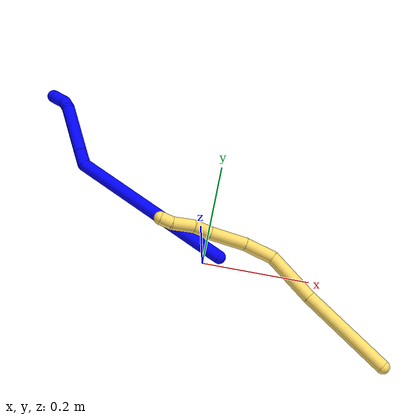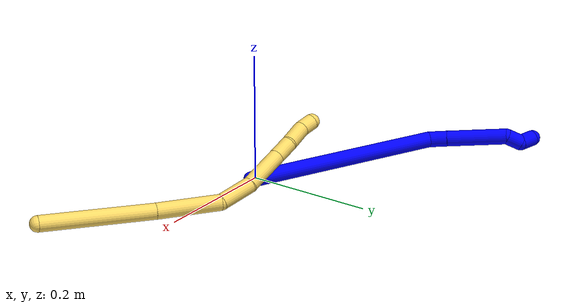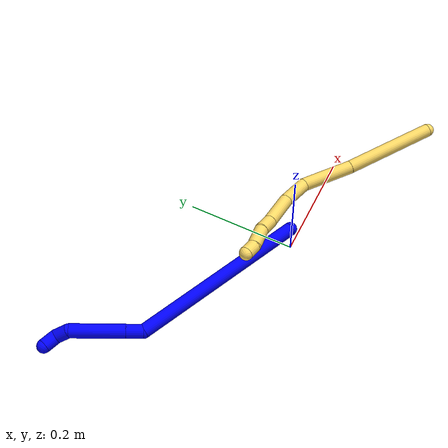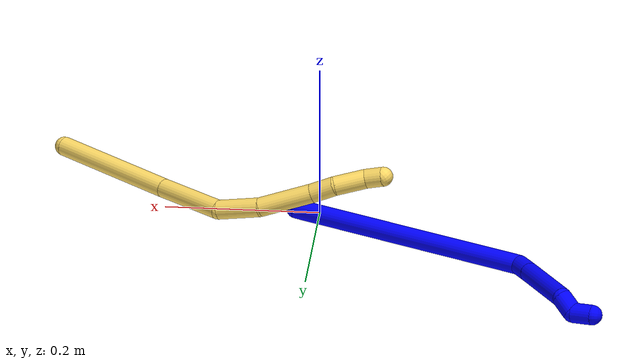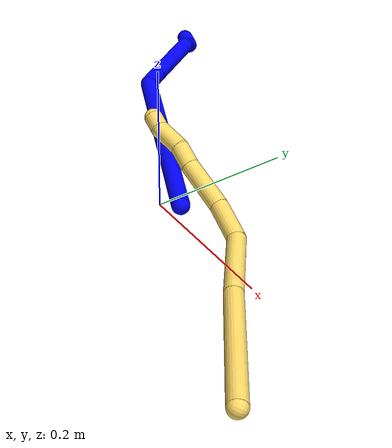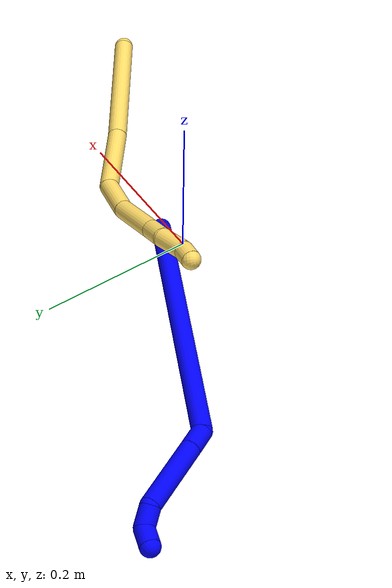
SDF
<sdf version="1.7">
 <world name="default">
  <model name="photoneo_s_sensor">
   <static>1</static>
   <pose>0 0 2 1.57079 1.57079 3.14159</pose>
   <link name="link">
    <inertial><mass>0.1</mass></inertial>
    <sensor name="sensor" type="depth">
     <update_rate>30</update_rate>
     <camera>
      <horizontal_fov>1.22</horizontal_fov>
      <image><width>1920</width><height>1200</height><format>B8G8R8</format></image>
      <clip><near>0.1</near><far>4</far></clip>
      <depth_camera><output>points</output></depth_camera>
     </camera>
     <plugin name="camera_plugin" filename="libgazebo_ros_depth_camera.so">
      <baseline>0.2</baseline>
      <alwaysOn>1</alwaysOn>
      <updateRate>0.0</updateRate>
      <cameraName>camera_ir</cameraName>
      <imageTopicName>/camera/color/image_raw</imageTopicName>
      <cameraInfoTopicName>/camera/color/camera_info</cameraInfoTopicName>
      <depthImageTopicName>/camera/depth/image_raw</depthImageTopicName>
      <depthImageCameraInfoTopicName>/camera/depth/camera_info</depthImageCameraInfoTopicName>
      <pointCloudTopicName>/camera/depth/points</pointCloudTopicName>
      <frameName>fr_optical</frameName>
      <pointCloudCutoff>0.1</pointCloudCutoff>
      <pointCloudCutoffMax>2.0</pointCloudCutoffMax>
      <distortionK1>0</distortionK1>
      <distortionK2>0</distortionK2>
      <distortionK3>0</distortionK3>
      <distortionT1>0</distortionT1>
      <distortionT2>0</distortionT2>
      <CxPrime>0</CxPrime>
      <Cx>0</Cx>
      <Cy>0</Cy>
      <focalLength>0</focalLength>
      <hackBaseline>0</hackBaseline>
     </plugin>
    </sensor>
   </link>
  </model>
  <model name="bin">
   <static>1</static>
   <link name="bottom">
    <collision name="collision-bottom">
     <pose>0 0 -0.01 0 -0 0</pose>
     <geometry><box><size>0.8 0.6 0.02</size></box></geometry>
     <surface>
      <friction><ode><mu>100</mu><mu2>100</mu2></ode></friction>
      <contact><collide_bitmask>65535</collide_bitmask></contact>
     </surface>
    </collision>
   </link>
   <link name="west_wall">
    <collision name="collision-west_wall">
     <pose>-0.41 0 0.1 0 -0 0</pose>
     <geometry><box><size>0.02 0.6 0.2</size></box></geometry>
     <surface>
      <friction><ode><mu>100</mu><mu2>100</mu2></ode></friction>
      <contact><collide_bitmask>65535</collide_bitmask></contact>
     </surface>
    </collision>
   </link>
   <link name="east_wall">
    <collision name="collision-east_wall">
     <pose>0.41 0 0.1 0 -0 0</pose>
     <geometry><box><size>0.02 0.6 0.2</size></box></geometry>
     <surface>
      <friction><ode><mu>100</mu><mu2>100</mu2></ode></friction>
      <contact><collide_bitmask>65535</collide_bitmask></contact>
     </surface>
    </collision>
   </link>
   <link name="south_wall">
    <collision name="collision-south_wall">
     <pose>0 -0.31 0.1 0 -0 0</pose>
     <geometry><box><size>0.8 0.02 0.2</size></box></geometry>
     <surface>
      <friction><ode><mu>100</mu><mu2>100</mu2></ode></friction>
      <contact><collide_bitmask>65535</collide_bitmask></contact>
     </surface>
    </collision>
   </link>
   <link name="north_wall">
    <collision name="collision-north_wall">
     <pose>0 0.31 0.1 0 -0 0</pose>
     <geometry><box><size>0.8 0.02 0.2</size></box></geometry>
     <surface>
      <friction><ode><mu>100</mu><mu2>100</mu2></ode></friction>
      <contact><collide_bitmask>65535</collide_bitmask></contact>
     </surface>
    </collision>
   </link>
  </model>
  <model name="1">
   <static>0</static>
   <link name="1">
    <collision name="collision-cylinder-e_1_1_4">
     <pose>-0.050463 0.036987 0.149506 -0.242526 -0.316632 0.038906</pose>
     <geometry><cylinder><radius>0.0125</radius><length>0.32414</length></cylinder></geometry>
     <surface>
      <friction><ode><mu>1.16</mu><mu2>1.16</mu2><slip1>0</slip1><slip2>0</slip2></ode></friction>
      <contact><ode><kp>1e+06</kp><kd>1</kd><max_vel>0</max_vel><min_depth>0.001</min_depth></ode></contact>
     </surface>
    </collision>
    <visual name="visual-cylinder-e_1_1_4">
     <pose>-0.050463 0.036987 0.149506 -0.242526 -0.316632 0.038906</pose>
     <geometry><cylinder><radius>0.0125</radius><length>0.32414</length></cylinder></geometry>
     <material><ambient>0 0 1 1</ambient></material>
    </visual>
    <collision name="collision-cylinder-e_2_4_5">
     <pose>-0.110583 0.082346 0.306589 -0.835223 -0.707504 0.324826</pose>
     <geometry><cylinder><radius>0.0125</radius><length>0.029713</length></cylinder></geometry>
     <surface>
      <friction><ode><mu>1.16</mu><mu2>1.16</mu2><slip1>0</slip1><slip2>0</slip2></ode></friction>
      <contact><ode><kp>1e+06</kp><kd>1</kd><max_vel>0</max_vel><min_depth>0.001</min_depth></ode></contact>
     </surface>
    </collision>
    <visual name="visual-cylinder-e_2_4_5">
     <pose>-0.110583 0.082346 0.306589 -0.835223 -0.707504 0.324826</pose>
     <geometry><cylinder><radius>0.0125</radius><length>0.029713</length></cylinder></geometry>
     <material><ambient>0 0 1 1</ambient></material>
    </visual>
    <collision name="collision-cylinder-e_3_5_6">
     <pose>-0.151496 0.117405 0.337959 -0.842657 -0.71838 0.33343</pose>
     <geometry><cylinder><radius>0.0125</radius><length>0.094982</length></cylinder></geometry>
     <surface>
      <friction><ode><mu>1.16</mu><mu2>1.16</mu2><slip1>0</slip1><slip2>0</slip2></ode></friction>
      <contact><ode><kp>1e+06</kp><kd>1</kd><max_vel>0</max_vel><min_depth>0.001</min_depth></ode></contact>
     </surface>
    </collision>
    <visual name="visual-cylinder-e_3_5_6">
     <pose>-0.151496 0.117405 0.337959 -0.842657 -0.71838 0.33343</pose>
     <geometry><cylinder><radius>0.0125</radius><length>0.094982</length></cylinder></geometry>
     <material><ambient>0 0 1 1</ambient></material>
    </visual>
    <collision name="collision-cylinder-e_4_6_7">
     <pose>-0.193004 0.144326 0.369486 -0.030124 -0.924357 0.015007</pose>
     <geometry><cylinder><radius>0.0125</radius><length>0.025685</length></cylinder></geometry>
     <surface>
      <friction><ode><mu>1.16</mu><mu2>1.16</mu2><slip1>0</slip1><slip2>0</slip2></ode></friction>
      <contact><ode><kp>1e+06</kp><kd>1</kd><max_vel>0</max_vel><min_depth>0.001</min_depth></ode></contact>
     </surface>
    </collision>
    <visual name="visual-cylinder-e_4_6_7">
     <pose>-0.193004 0.144326 0.369486 -0.030124 -0.924357 0.015007</pose>
     <geometry><cylinder><radius>0.0125</radius><length>0.025685</length></cylinder></geometry>
     <material><ambient>0 0 1 1</ambient></material>
    </visual>
    <collision name="collision-cylinder-e_5_7_2">
     <pose>-0.205483 0.147361 0.389444 -0.225266 -0.175751 0.01993</pose>
     <geometry><cylinder><radius>0.0125</radius><length>0.025479</length></cylinder></geometry>
     <surface>
      <friction><ode><mu>1.16</mu><mu2>1.16</mu2><slip1>0</slip1><slip2>0</slip2></ode></friction>
      <contact><ode><kp>1e+06</kp><kd>1</kd><max_vel>0</max_vel><min_depth>0.001</min_depth></ode></contact>
     </surface>
    </collision>
    <visual name="visual-cylinder-e_5_7_2">
     <pose>-0.205483 0.147361 0.389444 -0.225266 -0.175751 0.01993</pose>
     <geometry><cylinder><radius>0.0125</radius><length>0.025479</length></cylinder></geometry>
     <material><ambient>0 0 1 1</ambient></material>
    </visual>
    <collision name="collision-sphere-2">
     <pose>-0.20771 0.150163 0.401671 0 -0 0</pose>
     <geometry><sphere><radius>0.0125</radius></sphere></geometry>
     <surface>
      <friction><ode><mu>1.16</mu><mu2>1.16</mu2><slip1>0</slip1><slip2>0</slip2></ode></friction>
      <contact><ode><kp>1e+06</kp><kd>1</kd><max_vel>0</max_vel><min_depth>0.001</min_depth></ode></contact>
     </surface>
    </collision>
    <visual name="visual-sphere-2">
     <pose>-0.20771 0.150163 0.401671 0 -0 0</pose>
     <geometry><sphere><radius>0.0125</radius></sphere></geometry>
     <material><ambient>0 0 1 1</ambient></material>
    </visual>
    <collision name="collision-sphere-7">
     <pose>-0.203255 0.144559 0.377218 0 -0 0</pose>
     <geometry><sphere><radius>0.0125</radius></sphere></geometry>
     <surface>
      <friction><ode><mu>1.16</mu><mu2>1.16</mu2><slip1>0</slip1><slip2>0</slip2></ode></friction>
      <contact><ode><kp>1e+06</kp><kd>1</kd><max_vel>0</max_vel><min_depth>0.001</min_depth></ode></contact>
     </surface>
    </collision>
    <visual name="visual-sphere-7">
     <pose>-0.203255 0.144559 0.377218 0 -0 0</pose>
     <geometry><sphere><radius>0.0125</radius></sphere></geometry>
     <material><ambient>0 0 1 1</ambient></material>
    </visual>
    <collision name="collision-sphere-6">
     <pose>-0.182753 0.144093 0.361753 0 -0 0</pose>
     <geometry><sphere><radius>0.0125</radius></sphere></geometry>
     <surface>
      <friction><ode><mu>1.16</mu><mu2>1.16</mu2><slip1>0</slip1><slip2>0</slip2></ode></friction>
      <contact><ode><kp>1e+06</kp><kd>1</kd><max_vel>0</max_vel><min_depth>0.001</min_depth></ode></contact>
     </surface>
    </collision>
    <visual name="visual-sphere-6">
     <pose>-0.182753 0.144093 0.361753 0 -0 0</pose>
     <geometry><sphere><radius>0.0125</radius></sphere></geometry>
     <material><ambient>0 0 1 1</ambient></material>
    </visual>
    <collision name="collision-sphere-5">
     <pose>-0.120239 0.090717 0.314165 0 -0 0</pose>
     <geometry><sphere><radius>0.0125</radius></sphere></geometry>
     <surface>
      <friction><ode><mu>1.16</mu><mu2>1.16</mu2><slip1>0</slip1><slip2>0</slip2></ode></friction>
      <contact><ode><kp>1e+06</kp><kd>1</kd><max_vel>0</max_vel><min_depth>0.001</min_depth></ode></contact>
     </surface>
    </collision>
    <visual name="visual-sphere-5">
     <pose>-0.120239 0.090717 0.314165 0 -0 0</pose>
     <geometry><sphere><radius>0.0125</radius></sphere></geometry>
     <material><ambient>0 0 1 1</ambient></material>
    </visual>
    <collision name="collision-sphere-1">
     <geometry><sphere><radius>0.0125</radius></sphere></geometry>
     <surface>
      <friction><ode><mu>1.16</mu><mu2>1.16</mu2><slip1>0</slip1><slip2>0</slip2></ode></friction>
      <contact><ode><kp>1e+06</kp><kd>1</kd><max_vel>0</max_vel><min_depth>0.001</min_depth></ode></contact>
     </surface>
    </collision>
    <visual name="visual-sphere-1">
     <geometry><sphere><radius>0.0125</radius></sphere></geometry>
     <material><ambient>0 0 1 1</ambient></material>
    </visual>
    <collision name="collision-sphere-4">
     <pose>-0.100927 0.073974 0.299013 0 -0 0</pose>
     <geometry><sphere><radius>0.0125</radius></sphere></geometry>
     <surface>
      <friction><ode><mu>1.16</mu><mu2>1.16</mu2><slip1>0</slip1><slip2>0</slip2></ode></friction>
      <contact><ode><kp>1e+06</kp><kd>1</kd><max_vel>0</max_vel><min_depth>0.001</min_depth></ode></contact>
     </surface>
    </collision>
    <visual name="visual-sphere-4">
     <pose>-0.100927 0.073974 0.299013 0 -0 0</pose>
     <geometry><sphere><radius>0.0125</radius></sphere></geometry>
     <material><ambient>0 0 1 1</ambient></material>
    </visual>
    <inertial>
     <pose>-0.08845 0.066098 0.218168 0 -0 0</pose>
     <mass>0.5</mass>
     <inertia>
      <ixx>0.002875</ixx>
      <ixy>0</ixy>
      <ixz>0</ixz>
      <iyy>0.002977</iyy>
      <iyz>0</iyz>
      <izz>0.000278</izz>
     </inertia>
    </inertial>
   </link>
   <pose>0.029253 0.014098 0.011492 1.59038 -0.589645 -1.62398</pose>
  </model>
  <model name="5">
   <static>0</static>
   <link name="5">
    <collision name="collision-cylinder-e_1_1_4">
     <pose>-0.074235 0.046263 -0.011235 -1.80904 -1.00056 1.21515</pose>
     <geometry><cylinder><radius>0.0125</radius><length>0.176378</length></cylinder></geometry>
     <surface>
      <friction><ode><mu>1.16</mu><mu2>1.16</mu2><slip1>0</slip1><slip2>0</slip2></ode></friction>
      <contact><ode><kp>1e+06</kp><kd>1</kd><max_vel>0</max_vel><min_depth>0.001</min_depth></ode></contact>
     </surface>
    </collision>
    <visual name="visual-cylinder-e_1_1_4">
     <pose>-0.074235 0.046263 -0.011235 -1.80904 -1.00056 1.21515</pose>
     <geometry><cylinder><radius>0.0125</radius><length>0.176378</length></cylinder></geometry>
     <material><ambient>1 0.858824 0.4 1</ambient></material>
    </visual>
    <collision name="collision-cylinder-e_2_4_5">
     <pose>-0.192195 0.115436 -0.027358 -1.78098 -1.07895 1.27403</pose>
     <geometry><cylinder><radius>0.0125</radius><length>0.09921</length></cylinder></geometry>
     <surface>
      <friction><ode><mu>1.16</mu><mu2>1.16</mu2><slip1>0</slip1><slip2>0</slip2></ode></friction>
      <contact><ode><kp>1e+06</kp><kd>1</kd><max_vel>0</max_vel><min_depth>0.001</min_depth></ode></contact>
     </surface>
    </collision>
    <visual name="visual-cylinder-e_2_4_5">
     <pose>-0.192195 0.115436 -0.027358 -1.78098 -1.07895 1.27403</pose>
     <geometry><cylinder><radius>0.0125</radius><length>0.09921</length></cylinder></geometry>
     <material><ambient>1 0.858824 0.4 1</ambient></material>
    </visual>
    <collision name="collision-cylinder-e_3_5_6">
     <pose>-0.257196 0.149154 -0.047989 -2.54 -0.839334 1.92651</pose>
     <geometry><cylinder><radius>0.0125</radius><length>0.05718</length></cylinder></geometry>
     <surface>
      <friction><ode><mu>1.16</mu><mu2>1.16</mu2><slip1>0</slip1><slip2>0</slip2></ode></friction>
      <contact><ode><kp>1e+06</kp><kd>1</kd><max_vel>0</max_vel><min_depth>0.001</min_depth></ode></contact>
     </surface>
    </collision>
    <visual name="visual-cylinder-e_3_5_6">
     <pose>-0.257196 0.149154 -0.047989 -2.54 -0.839334 1.92651</pose>
     <geometry><cylinder><radius>0.0125</radius><length>0.05718</length></cylinder></geometry>
     <material><ambient>1 0.858824 0.4 1</ambient></material>
    </visual>
    <collision name="collision-cylinder-e_4_6_7">
     <pose>-0.301202 0.169231 -0.089471 -2.79593 -0.693297 2.24124</pose>
     <geometry><cylinder><radius>0.0125</radius><length>0.071131</length></cylinder></geometry>
     <surface>
      <friction><ode><mu>1.16</mu><mu2>1.16</mu2><slip1>0</slip1><slip2>0</slip2></ode></friction>
      <contact><ode><kp>1e+06</kp><kd>1</kd><max_vel>0</max_vel><min_depth>0.001</min_depth></ode></contact>
     </surface>
    </collision>
    <visual name="visual-cylinder-e_4_6_7">
     <pose>-0.301202 0.169231 -0.089471 -2.79593 -0.693297 2.24124</pose>
     <geometry><cylinder><radius>0.0125</radius><length>0.071131</length></cylinder></geometry>
     <material><ambient>1 0.858824 0.4 1</ambient></material>
    </visual>
    <collision name="collision-cylinder-e_5_7_8">
     <pose>-0.335099 0.181433 -0.126062 -2.87767 -0.781996 2.51857</pose>
     <geometry><cylinder><radius>0.0125</radius><length>0.031695</length></cylinder></geometry>
     <surface>
      <friction><ode><mu>1.16</mu><mu2>1.16</mu2><slip1>0</slip1><slip2>0</slip2></ode></friction>
      <contact><ode><kp>1e+06</kp><kd>1</kd><max_vel>0</max_vel><min_depth>0.001</min_depth></ode></contact>
     </surface>
    </collision>
    <visual name="visual-cylinder-e_5_7_8">
     <pose>-0.335099 0.181433 -0.126062 -2.87767 -0.781996 2.51857</pose>
     <geometry><cylinder><radius>0.0125</radius><length>0.031695</length></cylinder></geometry>
     <material><ambient>1 0.858824 0.4 1</ambient></material>
    </visual>
    <collision name="collision-cylinder-e_6_8_9">
     <pose>-0.356675 0.191289 -0.15321 -2.73978 -0.531526 1.85694</pose>
     <geometry><cylinder><radius>0.0125</radius><length>0.041072</length></cylinder></geometry>
     <surface>
      <friction><ode><mu>1.16</mu><mu2>1.16</mu2><slip1>0</slip1><slip2>0</slip2></ode></friction>
      <contact><ode><kp>1e+06</kp><kd>1</kd><max_vel>0</max_vel><min_depth>0.001</min_depth></ode></contact>
     </surface>
    </collision>
    <visual name="visual-cylinder-e_6_8_9">
     <pose>-0.356675 0.191289 -0.15321 -2.73978 -0.531526 1.85694</pose>
     <geometry><cylinder><radius>0.0125</radius><length>0.041072</length></cylinder></geometry>
     <material><ambient>1 0.858824 0.4 1</ambient></material>
    </visual>
    <collision name="collision-cylinder-e_7_9_2">
     <pose>-0.375545 0.202207 -0.176472 -2.62114 -0.811372 2.03172</pose>
     <geometry><cylinder><radius>0.0125</radius><length>0.023334</length></cylinder></geometry>
     <surface>
      <friction><ode><mu>1.16</mu><mu2>1.16</mu2><slip1>0</slip1><slip2>0</slip2></ode></friction>
      <contact><ode><kp>1e+06</kp><kd>1</kd><max_vel>0</max_vel><min_depth>0.001</min_depth></ode></contact>
     </surface>
    </collision>
    <visual name="visual-cylinder-e_7_9_2">
     <pose>-0.375545 0.202207 -0.176472 -2.62114 -0.811372 2.03172</pose>
     <geometry><cylinder><radius>0.0125</radius><length>0.023334</length></cylinder></geometry>
     <material><ambient>1 0.858824 0.4 1</ambient></material>
    </visual>
    <collision name="collision-sphere-2">
     <pose>-0.384007 0.206201 -0.183441 0 -0 0</pose>
     <geometry><sphere><radius>0.0125</radius></sphere></geometry>
     <surface>
      <friction><ode><mu>1.16</mu><mu2>1.16</mu2><slip1>0</slip1><slip2>0</slip2></ode></friction>
      <contact><ode><kp>1e+06</kp><kd>1</kd><max_vel>0</max_vel><min_depth>0.001</min_depth></ode></contact>
     </surface>
    </collision>
    <visual name="visual-sphere-2">
     <pose>-0.384007 0.206201 -0.183441 0 -0 0</pose>
     <geometry><sphere><radius>0.0125</radius></sphere></geometry>
     <material><ambient>1 0.858824 0.4 1</ambient></material>
    </visual>
    <collision name="collision-sphere-9">
     <pose>-0.367084 0.198212 -0.169502 0 -0 0</pose>
     <geometry><sphere><radius>0.0125</radius></sphere></geometry>
     <surface>
      <friction><ode><mu>1.16</mu><mu2>1.16</mu2><slip1>0</slip1><slip2>0</slip2></ode></friction>
      <contact><ode><kp>1e+06</kp><kd>1</kd><max_vel>0</max_vel><min_depth>0.001</min_depth></ode></contact>
     </surface>
    </collision>
    <visual name="visual-sphere-9">
     <pose>-0.367084 0.198212 -0.169502 0 -0 0</pose>
     <geometry><sphere><radius>0.0125</radius></sphere></geometry>
     <material><ambient>1 0.858824 0.4 1</ambient></material>
    </visual>
    <collision name="collision-sphere-4">
     <pose>-0.14847 0.092525 -0.02247 0 -0 0</pose>
     <geometry><sphere><radius>0.0125</radius></sphere></geometry>
     <surface>
      <friction><ode><mu>1.16</mu><mu2>1.16</mu2><slip1>0</slip1><slip2>0</slip2></ode></friction>
      <contact><ode><kp>1e+06</kp><kd>1</kd><max_vel>0</max_vel><min_depth>0.001</min_depth></ode></contact>
     </surface>
    </collision>
    <visual name="visual-sphere-4">
     <pose>-0.14847 0.092525 -0.02247 0 -0 0</pose>
     <geometry><sphere><radius>0.0125</radius></sphere></geometry>
     <material><ambient>1 0.858824 0.4 1</ambient></material>
    </visual>
    <collision name="collision-sphere-1">
     <geometry><sphere><radius>0.0125</radius></sphere></geometry>
     <surface>
      <friction><ode><mu>1.16</mu><mu2>1.16</mu2><slip1>0</slip1><slip2>0</slip2></ode></friction>
      <contact><ode><kp>1e+06</kp><kd>1</kd><max_vel>0</max_vel><min_depth>0.001</min_depth></ode></contact>
     </surface>
    </collision>
    <visual name="visual-sphere-1">
     <geometry><sphere><radius>0.0125</radius></sphere></geometry>
     <material><ambient>1 0.858824 0.4 1</ambient></material>
    </visual>
    <collision name="collision-sphere-8">
     <pose>-0.346266 0.184366 -0.136917 0 -0 0</pose>
     <geometry><sphere><radius>0.0125</radius></sphere></geometry>
     <surface>
      <friction><ode><mu>1.16</mu><mu2>1.16</mu2><slip1>0</slip1><slip2>0</slip2></ode></friction>
      <contact><ode><kp>1e+06</kp><kd>1</kd><max_vel>0</max_vel><min_depth>0.001</min_depth></ode></contact>
     </surface>
    </collision>
    <visual name="visual-sphere-8">
     <pose>-0.346266 0.184366 -0.136917 0 -0 0</pose>
     <geometry><sphere><radius>0.0125</radius></sphere></geometry>
     <material><ambient>1 0.858824 0.4 1</ambient></material>
    </visual>
    <collision name="collision-sphere-5">
     <pose>-0.235919 0.138346 -0.032245 0 -0 0</pose>
     <geometry><sphere><radius>0.0125</radius></sphere></geometry>
     <surface>
      <friction><ode><mu>1.16</mu><mu2>1.16</mu2><slip1>0</slip1><slip2>0</slip2></ode></friction>
      <contact><ode><kp>1e+06</kp><kd>1</kd><max_vel>0</max_vel><min_depth>0.001</min_depth></ode></contact>
     </surface>
    </collision>
    <visual name="visual-sphere-5">
     <pose>-0.235919 0.138346 -0.032245 0 -0 0</pose>
     <geometry><sphere><radius>0.0125</radius></sphere></geometry>
     <material><ambient>1 0.858824 0.4 1</ambient></material>
    </visual>
    <collision name="collision-sphere-6">
     <pose>-0.278473 0.159962 -0.063734 0 -0 0</pose>
     <geometry><sphere><radius>0.0125</radius></sphere></geometry>
     <surface>
      <friction><ode><mu>1.16</mu><mu2>1.16</mu2><slip1>0</slip1><slip2>0</slip2></ode></friction>
      <contact><ode><kp>1e+06</kp><kd>1</kd><max_vel>0</max_vel><min_depth>0.001</min_depth></ode></contact>
     </surface>
    </collision>
    <visual name="visual-sphere-6">
     <pose>-0.278473 0.159962 -0.063734 0 -0 0</pose>
     <geometry><sphere><radius>0.0125</radius></sphere></geometry>
     <material><ambient>1 0.858824 0.4 1</ambient></material>
    </visual>
    <collision name="collision-sphere-7">
     <pose>-0.323931 0.178499 -0.115207 0 -0 0</pose>
     <geometry><sphere><radius>0.0125</radius></sphere></geometry>
     <surface>
      <friction><ode><mu>1.16</mu><mu2>1.16</mu2><slip1>0</slip1><slip2>0</slip2></ode></friction>
      <contact><ode><kp>1e+06</kp><kd>1</kd><max_vel>0</max_vel><min_depth>0.001</min_depth></ode></contact>
     </surface>
    </collision>
    <visual name="visual-sphere-7">
     <pose>-0.323931 0.178499 -0.115207 0 -0 0</pose>
     <geometry><sphere><radius>0.0125</radius></sphere></geometry>
     <material><ambient>1 0.858824 0.4 1</ambient></material>
    </visual>
    <inertial>
     <pose>-0.204651 0.117008 -0.05642 0 -0 0</pose>
     <mass>0.5</mass>
     <inertia>
      <ixx>0.000358</ixx>
      <ixy>0</ixy>
      <ixz>0</ixz>
      <iyy>0.000757</iyy>
      <iyz>0</iyz>
      <izz>0.000192</izz>
     </inertia>
    </inertial>
   </link>
   <pose>0.348569 -0.133141 0.018228 -2.00493 0.426471 -0.962558</pose>
  </model>
 </world>
</sdf>
